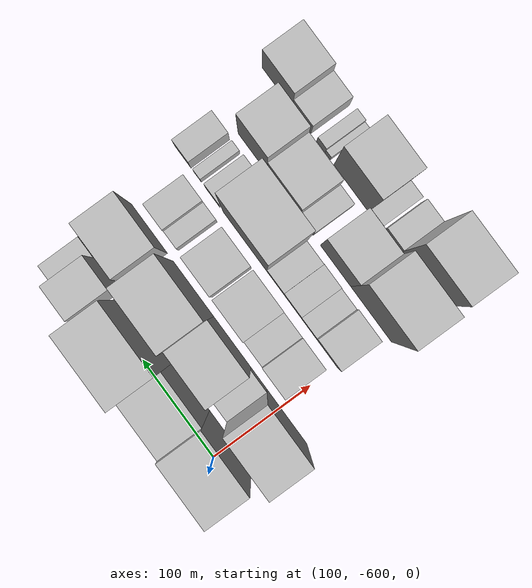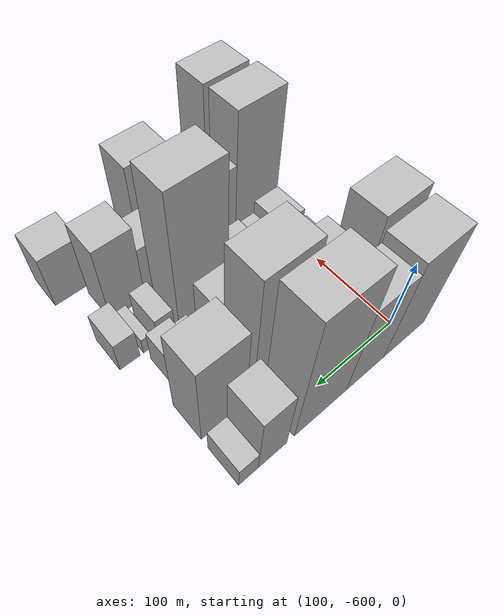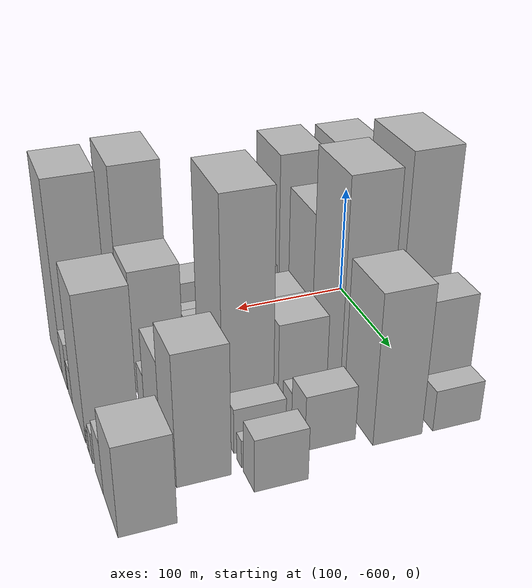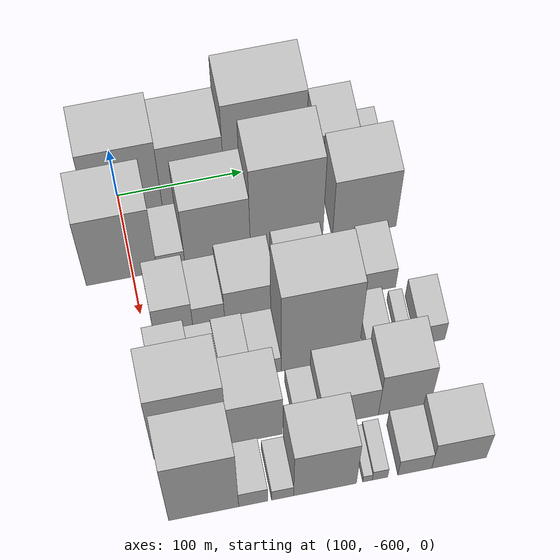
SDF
<sdf version="1.6">
 <world name="default">
  <model name="building_6">
   <static>1</static>
   <pose>100.0000 -596.5173 0 0.000000 0.000000 0.000000</pose>
   <link name="link">
    <pose>0 0 76.50 0 0 0</pose>
    <collision name="collision"><geometry><box><size>40.0000 59.0398 153.0000</size></box></geometry></collision>
    <visual name="visual">
     <cast_shadows>0</cast_shadows>
     <geometry><box><size>40.0000 59.0398 153.0000</size></box></geometry>
     <material>
      <script>
       <uri>model://HANNAS_wall/materials/scripts</uri>
       <uri>model://HANNAS_wall/materials/textures</uri>
       <name>vrc/HANNAS_wall</name>
      </script>
     </material>
    </visual>
   </link>
  </model>
  <model name="building_7">
   <static>1</static>
   <pose>100.0000 -541.8641 0 0.000000 0.000000 0.000000</pose>
   <link name="link">
    <pose>0 0 69.00 0 0 0</pose>
    <collision name="collision"><geometry><box><size>40.0000 50.2668 138.0000</size></box></geometry></collision>
    <visual name="visual">
     <cast_shadows>0</cast_shadows>
     <geometry><box><size>40.0000 50.2668 138.0000</size></box></geometry>
     <material>
      <script>
       <uri>model://HANNAS_wall/materials/scripts</uri>
       <uri>model://HANNAS_wall/materials/textures</uri>
       <name>vrc/HANNAS_wall</name>
      </script>
     </material>
    </visual>
   </link>
  </model>
  <model name="building_8">
   <static>1</static>
   <pose>100.0000 -484.4871 0 0.000000 0.000000 0.000000</pose>
   <link name="link">
    <pose>0 0 99.00 0 0 0</pose>
    <collision name="collision"><geometry><box><size>40.0000 64.4871 198.0000</size></box></geometry></collision>
    <visual name="visual">
     <cast_shadows>0</cast_shadows>
     <geometry><box><size>40.0000 64.4871 198.0000</size></box></geometry>
     <material>
      <script>
       <uri>model://HANNAS_wall/materials/scripts</uri>
       <uri>model://HANNAS_wall/materials/textures</uri>
       <name>vrc/HANNAS_wall</name>
      </script>
     </material>
    </visual>
   </link>
  </model>
  <model name="building_9">
   <static>1</static>
   <pose>100.0000 -426.8253 0 0.000000 0.000000 0.000000</pose>
   <link name="link">
    <pose>0 0 49.50 0 0 0</pose>
    <collision name="collision"><geometry><box><size>40.0000 32.8365 99.0000</size></box></geometry></collision>
    <visual name="visual">
     <cast_shadows>0</cast_shadows>
     <geometry><box><size>40.0000 32.8365 99.0000</size></box></geometry>
     <material>
      <script>
       <uri>model://HANNAS_wall/materials/scripts</uri>
       <uri>model://HANNAS_wall/materials/textures</uri>
       <name>vrc/HANNAS_wall</name>
      </script>
     </material>
    </visual>
   </link>
  </model>
  <model name="building_10">
   <static>1</static>
   <pose>100.0000 -399.8568 0 0.000000 0.000000 0.000000</pose>
   <link name="link">
    <pose>0 0 18.00 0 0 0</pose>
    <collision name="collision"><geometry><box><size>40.0000 21.1007 36.0000</size></box></geometry></collision>
    <visual name="visual">
     <cast_shadows>0</cast_shadows>
     <geometry><box><size>40.0000 21.1007 36.0000</size></box></geometry>
     <material>
      <script>
       <uri>model://HANNAS_wall/materials/scripts</uri>
       <uri>model://HANNAS_wall/materials/textures</uri>
       <name>vrc/HANNAS_wall</name>
      </script>
     </material>
    </visual>
   </link>
  </model>
  <model name="building_50">
   <static>1</static>
   <pose>149.0000 -608.8811 0 0.000000 0.000000 0.000000</pose>
   <link name="link">
    <pose>0 0 75.00 0 0 0</pose>
    <collision name="collision"><geometry><box><size>40.0000 56.3745 150.0000</size></box></geometry></collision>
    <visual name="visual">
     <cast_shadows>0</cast_shadows>
     <geometry><box><size>40.0000 56.3745 150.0000</size></box></geometry>
     <material>
      <script>
       <uri>model://HANNAS_wall/materials/scripts</uri>
       <uri>model://HANNAS_wall/materials/textures</uri>
       <name>vrc/HANNAS_wall</name>
      </script>
     </material>
    </visual>
   </link>
  </model>
  <model name="building_51">
   <static>1</static>
   <pose>149.0000 -569.5120 0 0.000000 0.000000 0.000000</pose>
   <link name="link">
    <pose>0 0 19.50 0 0 0</pose>
    <collision name="collision"><geometry><box><size>40.0000 22.3636 39.0000</size></box></geometry></collision>
    <visual name="visual">
     <cast_shadows>0</cast_shadows>
     <geometry><box><size>40.0000 22.3636 39.0000</size></box></geometry>
     <material>
      <script>
       <uri>model://HANNAS_wall/materials/scripts</uri>
       <uri>model://HANNAS_wall/materials/textures</uri>
       <name>vrc/HANNAS_wall</name>
      </script>
     </material>
    </visual>
   </link>
  </model>
  <model name="building_52">
   <static>1</static>
   <pose>149.0000 -532.1994 0 0.000000 0.000000 0.000000</pose>
   <link name="link">
    <pose>0 0 66.00 0 0 0</pose>
    <collision name="collision"><geometry><box><size>40.0000 52.2616 132.0000</size></box></geometry></collision>
    <visual name="visual">
     <cast_shadows>0</cast_shadows>
     <geometry><box><size>40.0000 52.2616 132.0000</size></box></geometry>
     <material>
      <script>
       <uri>model://HANNAS_wall/materials/scripts</uri>
       <uri>model://HANNAS_wall/materials/textures</uri>
       <name>vrc/HANNAS_wall</name>
      </script>
     </material>
    </visual>
   </link>
  </model>
  <model name="building_53">
   <static>1</static>
   <pose>149.0000 -477.2909 0 0.000000 0.000000 0.000000</pose>
   <link name="link">
    <pose>0 0 94.50 0 0 0</pose>
    <collision name="collision"><geometry><box><size>40.0000 57.5554 189.0000</size></box></geometry></collision>
    <visual name="visual">
     <cast_shadows>0</cast_shadows>
     <geometry><box><size>40.0000 57.5554 189.0000</size></box></geometry>
     <material>
      <script>
       <uri>model://HANNAS_wall/materials/scripts</uri>
       <uri>model://HANNAS_wall/materials/textures</uri>
       <name>vrc/HANNAS_wall</name>
      </script>
     </material>
    </visual>
   </link>
  </model>
  <model name="building_54">
   <static>1</static>
   <pose>149.0000 -414.9162 0 0.000000 0.000000 0.000000</pose>
   <link name="link">
    <pose>0 0 64.50 0 0 0</pose>
    <collision name="collision"><geometry><box><size>40.0000 51.1941 129.0000</size></box></geometry></collision>
    <visual name="visual">
     <cast_shadows>0</cast_shadows>
     <geometry><box><size>40.0000 51.1941 129.0000</size></box></geometry>
     <material>
      <script>
       <uri>model://HANNAS_wall/materials/scripts</uri>
       <uri>model://HANNAS_wall/materials/textures</uri>
       <name>vrc/HANNAS_wall</name>
      </script>
     </material>
    </visual>
   </link>
  </model>
  <model name="building_97">
   <static>1</static>
   <pose>198.0000 -577.2522 0 0.000000 0.000000 0.000000</pose>
   <link name="link">
    <pose>0 0 30.00 0 0 0</pose>
    <collision name="collision"><geometry><box><size>40.0000 31.0154 60.0000</size></box></geometry></collision>
    <visual name="visual">
     <cast_shadows>0</cast_shadows>
     <geometry><box><size>40.0000 31.0154 60.0000</size></box></geometry>
     <material>
      <script>
       <uri>model://HANNAS_wall/materials/scripts</uri>
       <uri>model://HANNAS_wall/materials/textures</uri>
       <name>vrc/HANNAS_wall</name>
      </script>
     </material>
    </visual>
   </link>
  </model>
  <model name="building_98">
   <static>1</static>
   <pose>198.0000 -549.0928 0 0.000000 0.000000 0.000000</pose>
   <link name="link">
    <pose>0 0 22.50 0 0 0</pose>
    <collision name="collision"><geometry><box><size>40.0000 25.3034 45.0000</size></box></geometry></collision>
    <visual name="visual">
     <cast_shadows>0</cast_shadows>
     <geometry><box><size>40.0000 25.3034 45.0000</size></box></geometry>
     <material>
      <script>
       <uri>model://HANNAS_wall/materials/scripts</uri>
       <uri>model://HANNAS_wall/materials/textures</uri>
       <name>vrc/HANNAS_wall</name>
      </script>
     </material>
    </visual>
   </link>
  </model>
  <model name="building_99">
   <static>1</static>
   <pose>198.0000 -515.8874 0 0.000000 0.000000 0.000000</pose>
   <link name="link">
    <pose>0 0 34.50 0 0 0</pose>
    <collision name="collision"><geometry><box><size>40.0000 41.1074 69.0000</size></box></geometry></collision>
    <visual name="visual">
     <cast_shadows>0</cast_shadows>
     <geometry><box><size>40.0000 41.1074 69.0000</size></box></geometry>
     <material>
      <script>
       <uri>model://HANNAS_wall/materials/scripts</uri>
       <uri>model://HANNAS_wall/materials/textures</uri>
       <name>vrc/HANNAS_wall</name>
      </script>
     </material>
    </visual>
   </link>
  </model>
  <model name="building_100">
   <static>1</static>
   <pose>198.0000 -473.2098 0 0.000000 0.000000 0.000000</pose>
   <link name="link">
    <pose>0 0 37.50 0 0 0</pose>
    <collision name="collision"><geometry><box><size>40.0000 38.2478 75.0000</size></box></geometry></collision>
    <visual name="visual">
     <cast_shadows>0</cast_shadows>
     <geometry><box><size>40.0000 38.2478 75.0000</size></box></geometry>
     <material>
      <script>
       <uri>model://HANNAS_wall/materials/scripts</uri>
       <uri>model://HANNAS_wall/materials/textures</uri>
       <name>vrc/HANNAS_wall</name>
      </script>
     </material>
    </visual>
   </link>
  </model>
  <model name="building_101">
   <static>1</static>
   <pose>198.0000 -435.2208 0 0.000000 0.000000 0.000000</pose>
   <link name="link">
    <pose>0 0 16.50 0 0 0</pose>
    <collision name="collision"><geometry><box><size>40.0000 17.7302 33.0000</size></box></geometry></collision>
    <visual name="visual">
     <cast_shadows>0</cast_shadows>
     <geometry><box><size>40.0000 17.7302 33.0000</size></box></geometry>
     <material>
      <script>
       <uri>model://HANNAS_wall/materials/scripts</uri>
       <uri>model://HANNAS_wall/materials/textures</uri>
       <name>vrc/HANNAS_wall</name>
      </script>
     </material>
    </visual>
   </link>
  </model>
  <model name="building_102">
   <static>1</static>
   <pose>198.0000 -413.3399 0 0.000000 0.000000 0.000000</pose>
   <link name="link">
    <pose>0 0 24.00 0 0 0</pose>
    <collision name="collision"><geometry><box><size>40.0000 26.0318 48.0000</size></box></geometry></collision>
    <visual name="visual">
     <cast_shadows>0</cast_shadows>
     <geometry><box><size>40.0000 26.0318 48.0000</size></box></geometry>
     <material>
      <script>
       <uri>model://HANNAS_wall/materials/scripts</uri>
       <uri>model://HANNAS_wall/materials/textures</uri>
       <name>vrc/HANNAS_wall</name>
      </script>
     </material>
    </visual>
   </link>
  </model>
  <model name="building_147">
   <static>1</static>
   <pose>247.0000 -585.6990 0 0.000000 0.000000 0.000000</pose>
   <link name="link">
    <pose>0 0 27.00 0 0 0</pose>
    <collision name="collision"><geometry><box><size>40.0000 31.5092 54.0000</size></box></geometry></collision>
    <visual name="visual">
     <cast_shadows>0</cast_shadows>
     <geometry><box><size>40.0000 31.5092 54.0000</size></box></geometry>
     <material>
      <script>
       <uri>model://HANNAS_wall/materials/scripts</uri>
       <uri>model://HANNAS_wall/materials/textures</uri>
       <name>vrc/HANNAS_wall</name>
      </script>
     </material>
    </visual>
   </link>
  </model>
  <model name="building_148">
   <static>1</static>
   <pose>247.0000 -559.4164 0 0.000000 0.000000 0.000000</pose>
   <link name="link">
    <pose>0 0 18.00 0 0 0</pose>
    <collision name="collision"><geometry><box><size>40.0000 21.0559 36.0000</size></box></geometry></collision>
    <visual name="visual">
     <cast_shadows>0</cast_shadows>
     <geometry><box><size>40.0000 21.0559 36.0000</size></box></geometry>
     <material>
      <script>
       <uri>model://HANNAS_wall/materials/scripts</uri>
       <uri>model://HANNAS_wall/materials/textures</uri>
       <name>vrc/HANNAS_wall</name>
      </script>
     </material>
    </visual>
   </link>
  </model>
  <model name="building_149">
   <static>1</static>
   <pose>247.0000 -536.9718 0 0.000000 0.000000 0.000000</pose>
   <link name="link">
    <pose>0 0 21.00 0 0 0</pose>
    <collision name="collision"><geometry><box><size>40.0000 23.8332 42.0000</size></box></geometry></collision>
    <visual name="visual">
     <cast_shadows>0</cast_shadows>
     <geometry><box><size>40.0000 23.8332 42.0000</size></box></geometry>
     <material>
      <script>
       <uri>model://HANNAS_wall/materials/scripts</uri>
       <uri>model://HANNAS_wall/materials/textures</uri>
       <name>vrc/HANNAS_wall</name>
      </script>
     </material>
    </visual>
   </link>
  </model>
  <model name="building_150">
   <static>1</static>
   <pose>247.0000 -513.3599 0 0.000000 0.000000 0.000000</pose>
   <link name="link">
    <pose>0 0 19.50 0 0 0</pose>
    <collision name="collision"><geometry><box><size>40.0000 23.3907 39.0000</size></box></geometry></collision>
    <visual name="visual">
     <cast_shadows>0</cast_shadows>
     <geometry><box><size>40.0000 23.3907 39.0000</size></box></geometry>
     <material>
      <script>
       <uri>model://HANNAS_wall/materials/scripts</uri>
       <uri>model://HANNAS_wall/materials/textures</uri>
       <name>vrc/HANNAS_wall</name>
      </script>
     </material>
    </visual>
   </link>
  </model>
  <model name="building_151">
   <static>1</static>
   <pose>247.0000 -471.0673 0 0.000000 0.000000 0.000000</pose>
   <link name="link">
    <pose>0 0 97.50 0 0 0</pose>
    <collision name="collision"><geometry><box><size>40.0000 61.1944 195.0000</size></box></geometry></collision>
    <visual name="visual">
     <cast_shadows>0</cast_shadows>
     <geometry><box><size>40.0000 61.1944 195.0000</size></box></geometry>
     <material>
      <script>
       <uri>model://HANNAS_wall/materials/scripts</uri>
       <uri>model://HANNAS_wall/materials/textures</uri>
       <name>vrc/HANNAS_wall</name>
      </script>
     </material>
    </visual>
   </link>
  </model>
  <model name="building_152">
   <static>1</static>
   <pose>247.0000 -425.3064 0 0.000000 0.000000 0.000000</pose>
   <link name="link">
    <pose>0 0 19.50 0 0 0</pose>
    <collision name="collision"><geometry><box><size>40.0000 20.3273 39.0000</size></box></geometry></collision>
    <visual name="visual">
     <cast_shadows>0</cast_shadows>
     <geometry><box><size>40.0000 20.3273 39.0000</size></box></geometry>
     <material>
      <script>
       <uri>model://HANNAS_wall/materials/scripts</uri>
       <uri>model://HANNAS_wall/materials/textures</uri>
       <name>vrc/HANNAS_wall</name>
      </script>
     </material>
    </visual>
   </link>
  </model>
  <model name="building_153">
   <static>1</static>
   <pose>247.0000 -403.8311 0 0.000000 0.000000 0.000000</pose>
   <link name="link">
    <pose>0 0 12.00 0 0 0</pose>
    <collision name="collision"><geometry><box><size>40.0000 10.6235 24.0000</size></box></geometry></collision>
    <visual name="visual">
     <cast_shadows>0</cast_shadows>
     <geometry><box><size>40.0000 10.6235 24.0000</size></box></geometry>
     <material>
      <script>
       <uri>model://HANNAS_wall/materials/scripts</uri>
       <uri>model://HANNAS_wall/materials/textures</uri>
       <name>vrc/HANNAS_wall</name>
      </script>
     </material>
    </visual>
   </link>
  </model>
  <model name="building_154">
   <static>1</static>
   <pose>247.0000 -383.2195 0 0.000000 0.000000 0.000000</pose>
   <link name="link">
    <pose>0 0 22.50 0 0 0</pose>
    <collision name="collision"><geometry><box><size>40.0000 22.5996 45.0000</size></box></geometry></collision>
    <visual name="visual">
     <cast_shadows>0</cast_shadows>
     <geometry><box><size>40.0000 22.5996 45.0000</size></box></geometry>
     <material>
      <script>
       <uri>model://HANNAS_wall/materials/scripts</uri>
       <uri>model://HANNAS_wall/materials/textures</uri>
       <name>vrc/HANNAS_wall</name>
      </script>
     </material>
    </visual>
   </link>
  </model>
  <model name="building_197">
   <static>1</static>
   <pose>296.0000 -581.9335 0 0.000000 0.000000 0.000000</pose>
   <link name="link">
    <pose>0 0 87.00 0 0 0</pose>
    <collision name="collision"><geometry><box><size>40.0000 57.3744 174.0000</size></box></geometry></collision>
    <visual name="visual">
     <cast_shadows>0</cast_shadows>
     <geometry><box><size>40.0000 57.3744 174.0000</size></box></geometry>
     <material>
      <script>
       <uri>model://HANNAS_wall/materials/scripts</uri>
       <uri>model://HANNAS_wall/materials/textures</uri>
       <name>vrc/HANNAS_wall</name>
      </script>
     </material>
    </visual>
   </link>
  </model>
  <model name="building_198">
   <static>1</static>
   <pose>296.0000 -531.8560 0 0.000000 0.000000 0.000000</pose>
   <link name="link">
    <pose>0 0 54.00 0 0 0</pose>
    <collision name="collision"><geometry><box><size>40.0000 42.7805 108.0000</size></box></geometry></collision>
    <visual name="visual">
     <cast_shadows>0</cast_shadows>
     <geometry><box><size>40.0000 42.7805 108.0000</size></box></geometry>
     <material>
      <script>
       <uri>model://HANNAS_wall/materials/scripts</uri>
       <uri>model://HANNAS_wall/materials/textures</uri>
       <name>vrc/HANNAS_wall</name>
      </script>
     </material>
    </visual>
   </link>
  </model>
  <model name="building_199">
   <static>1</static>
   <pose>296.0000 -490.7041 0 0.000000 0.000000 0.000000</pose>
   <link name="link">
    <pose>0 0 18.00 0 0 0</pose>
    <collision name="collision"><geometry><box><size>40.0000 19.5233 36.0000</size></box></geometry></collision>
    <visual name="visual">
     <cast_shadows>0</cast_shadows>
     <geometry><box><size>40.0000 19.5233 36.0000</size></box></geometry>
     <material>
      <script>
       <uri>model://HANNAS_wall/materials/scripts</uri>
       <uri>model://HANNAS_wall/materials/textures</uri>
       <name>vrc/HANNAS_wall</name>
      </script>
     </material>
    </visual>
   </link>
  </model>
  <model name="building_200">
   <static>1</static>
   <pose>296.0000 -458.0785 0 0.000000 0.000000 0.000000</pose>
   <link name="link">
    <pose>0 0 39.00 0 0 0</pose>
    <collision name="collision"><geometry><box><size>40.0000 45.7278 78.0000</size></box></geometry></collision>
    <visual name="visual">
     <cast_shadows>0</cast_shadows>
     <geometry><box><size>40.0000 45.7278 78.0000</size></box></geometry>
     <material>
      <script>
       <uri>model://HANNAS_wall/materials/scripts</uri>
       <uri>model://HANNAS_wall/materials/textures</uri>
       <name>vrc/HANNAS_wall</name>
      </script>
     </material>
    </visual>
   </link>
  </model>
  <model name="building_201">
   <static>1</static>
   <pose>296.0000 -414.7718 0 0.000000 0.000000 0.000000</pose>
   <link name="link">
    <pose>0 0 55.50 0 0 0</pose>
    <collision name="collision"><geometry><box><size>40.0000 40.8856 111.0000</size></box></geometry></collision>
    <visual name="visual">
     <cast_shadows>0</cast_shadows>
     <geometry><box><size>40.0000 40.8856 111.0000</size></box></geometry>
     <material>
      <script>
       <uri>model://HANNAS_wall/materials/scripts</uri>
       <uri>model://HANNAS_wall/materials/textures</uri>
       <name>vrc/HANNAS_wall</name>
      </script>
     </material>
    </visual>
   </link>
  </model>
  <model name="building_241">
   <static>1</static>
   <pose>345.0000 -581.3354 0 0.000000 0.000000 0.000000</pose>
   <link name="link">
    <pose>0 0 85.50 0 0 0</pose>
    <collision name="collision"><geometry><box><size>40.0000 54.1468 171.0000</size></box></geometry></collision>
    <visual name="visual">
     <cast_shadows>0</cast_shadows>
     <geometry><box><size>40.0000 54.1468 171.0000</size></box></geometry>
     <material>
      <script>
       <uri>model://HANNAS_wall/materials/scripts</uri>
       <uri>model://HANNAS_wall/materials/textures</uri>
       <name>vrc/HANNAS_wall</name>
      </script>
     </material>
    </visual>
   </link>
  </model>
  <model name="building_242">
   <static>1</static>
   <pose>345.0000 -542.9978 0 0.000000 0.000000 0.000000</pose>
   <link name="link">
    <pose>0 0 21.00 0 0 0</pose>
    <collision name="collision"><geometry><box><size>40.0000 22.5285 42.0000</size></box></geometry></collision>
    <visual name="visual">
     <cast_shadows>0</cast_shadows>
     <geometry><box><size>40.0000 22.5285 42.0000</size></box></geometry>
     <material>
      <script>
       <uri>model://HANNAS_wall/materials/scripts</uri>
       <uri>model://HANNAS_wall/materials/textures</uri>
       <name>vrc/HANNAS_wall</name>
      </script>
     </material>
    </visual>
   </link>
  </model>
  <model name="building_243">
   <static>1</static>
   <pose>345.0000 -520.2400 0 0.000000 0.000000 0.000000</pose>
   <link name="link">
    <pose>0 0 15.00 0 0 0</pose>
    <collision name="collision"><geometry><box><size>40.0000 16.9870 30.0000</size></box></geometry></collision>
    <visual name="visual">
     <cast_shadows>0</cast_shadows>
     <geometry><box><size>40.0000 16.9870 30.0000</size></box></geometry>
     <material>
      <script>
       <uri>model://HANNAS_wall/materials/scripts</uri>
       <uri>model://HANNAS_wall/materials/textures</uri>
       <name>vrc/HANNAS_wall</name>
      </script>
     </material>
    </visual>
   </link>
  </model>
  <model name="building_244">
   <static>1</static>
   <pose>345.0000 -487.3387 0 0.000000 0.000000 0.000000</pose>
   <link name="link">
    <pose>0 0 63.00 0 0 0</pose>
    <collision name="collision"><geometry><box><size>40.0000 48.8156 126.0000</size></box></geometry></collision>
    <visual name="visual">
     <cast_shadows>0</cast_shadows>
     <geometry><box><size>40.0000 48.8156 126.0000</size></box></geometry>
     <material>
      <script>
       <uri>model://HANNAS_wall/materials/scripts</uri>
       <uri>model://HANNAS_wall/materials/textures</uri>
       <name>vrc/HANNAS_wall</name>
      </script>
     </material>
    </visual>
   </link>
  </model>
  <model name="building_245">
   <static>1</static>
   <pose>345.0000 -454.2306 0 0.000000 0.000000 0.000000</pose>
   <link name="link">
    <pose>0 0 9.00 0 0 0</pose>
    <collision name="collision"><geometry><box><size>40.0000 7.4004 18.0000</size></box></geometry></collision>
    <visual name="visual">
     <cast_shadows>0</cast_shadows>
     <geometry><box><size>40.0000 7.4004 18.0000</size></box></geometry>
     <material>
      <script>
       <uri>model://HANNAS_wall/materials/scripts</uri>
       <uri>model://HANNAS_wall/materials/textures</uri>
       <name>vrc/HANNAS_wall</name>
      </script>
     </material>
    </visual>
   </link>
  </model>
  <model name="building_246">
   <static>1</static>
   <pose>345.0000 -444.5282 0 0.000000 0.000000 0.000000</pose>
   <link name="link">
    <pose>0 0 13.50 0 0 0</pose>
    <collision name="collision"><geometry><box><size>40.0000 12.0045 27.0000</size></box></geometry></collision>
    <visual name="visual">
     <cast_shadows>0</cast_shadows>
     <geometry><box><size>40.0000 12.0045 27.0000</size></box></geometry>
     <material>
      <script>
       <uri>model://HANNAS_wall/materials/scripts</uri>
       <uri>model://HANNAS_wall/materials/textures</uri>
       <name>vrc/HANNAS_wall</name>
      </script>
     </material>
    </visual>
   </link>
  </model>
  <model name="building_247">
   <static>1</static>
   <pose>345.0000 -417.3299 0 0.000000 0.000000 0.000000</pose>
   <link name="link">
    <pose>0 0 22.50 0 0 0</pose>
    <collision name="collision"><geometry><box><size>40.0000 26.3920 45.0000</size></box></geometry></collision>
    <visual name="visual">
     <cast_shadows>0</cast_shadows>
     <geometry><box><size>40.0000 26.3920 45.0000</size></box></geometry>
     <material>
      <script>
       <uri>model://HANNAS_wall/materials/scripts</uri>
       <uri>model://HANNAS_wall/materials/textures</uri>
       <name>vrc/HANNAS_wall</name>
      </script>
     </material>
    </visual>
   </link>
  </model>
  <model name="building_248">
   <static>1</static>
   <pose>345.0000 -382.7586 0 0.000000 0.000000 0.000000</pose>
   <link name="link">
    <pose>0 0 37.50 0 0 0</pose>
    <collision name="collision"><geometry><box><size>40.0000 42.7507 75.0000</size></box></geometry></collision>
    <visual name="visual">
     <cast_shadows>0</cast_shadows>
     <geometry><box><size>40.0000 42.7507 75.0000</size></box></geometry>
     <material>
      <script>
       <uri>model://HANNAS_wall/materials/scripts</uri>
       <uri>model://HANNAS_wall/materials/textures</uri>
       <name>vrc/HANNAS_wall</name>
      </script>
     </material>
    </visual>
   </link>
  </model>
 </world>
</sdf>
